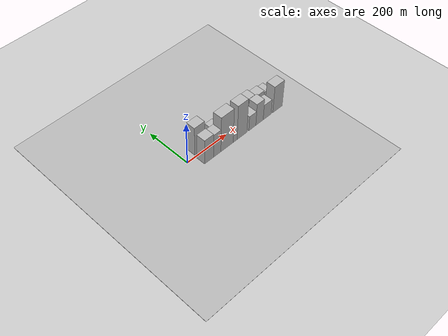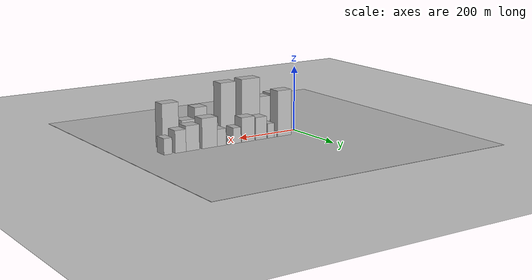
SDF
<?xml version="1.0" encoding="utf-8"?>

<sdf version="1.6">

   <world name="default">

      <gui fullscreen="0">

         <camera name="user_camera">

            <pose>-15 0 4.57585 0 0 0</pose>

            <view_controller>orbit</view_controller>

         </camera>

      </gui>

      <scene>

         <sky>

           <clouds>

             <speed>12</speed>

           </clouds>

         </sky>

         <ambient>0.4 0.4 0.4 1</ambient>

         <background>0.7 0.7 0.7 1</background>

         <shadows>1</shadows>

      </scene>

      <gravity>0 0 -9.8066</gravity>

      <magnetic_field>6e-06 2.3e-05 -4.2e-05</magnetic_field>

      <physics default="0" name="default_physics" type="ode">

         <ode>

            <solver>

               <type>quick</type>

               <iters>10</iters>

               <sor>1.0</sor>

               <use_dynamic_moi_rescaling>0</use_dynamic_moi_rescaling>

            </solver>

            <constraints>

               <cfm>0</cfm>

               <erp>0.2</erp>

               <contact_max_correcting_vel>100</contact_max_correcting_vel>

               <contact_surface_layer>0.001</contact_surface_layer>

            </constraints>

         </ode>

         <max_step_size>0.004</max_step_size>

         <real_time_factor>1</real_time_factor>

         <real_time_update_rate>250</real_time_update_rate>

      </physics>

      <light name="sun" type="directional">

         <cast_shadows>1</cast_shadows>

         <pose>0 0 10 0 0 0</pose>

         <diffuse>0.8 0.8 0.8 1</diffuse>

         <specular>0.2 0.2 0.2 1</specular>

         <attenuation>

            <range>1000</range>

            <constant>0.9</constant>

            <linear>0.01</linear>

            <quadratic>0.001</quadratic>

         </attenuation>

         <direction>-0.5 0.1 -0.9</direction>

      </light>

      <include>

         <name>ground_plane_1</name>

         <uri>model://HANNAS_ground_plane</uri>

         <pose>0 0 0  0 0 0</pose>

      </include>

      <include>

         <name>ground_plane_2</name>

         <uri>model://HANNAS_ground_plane</uri>

         <pose>100 0 0  0 0 0</pose>

      </include>

      <model name="building_1">

         <static>1</static>

         <pose frame="">69.1234 27.5000 0 0.000000 0.000000 1.570796</pose>

         <link name="link">

            <pose frame="">0 0 70.50 0 0 0</pose>

            <collision name="collision">

               <geometry>

                  <box>

                     <size>40.0000 50.2469 141.0000</size>

                  </box>

               </geometry>

               <max_contacts>10</max_contacts>

               <surface>

                  <contact>

                     <ode/>

                  </contact>

                  <bounce/>

                  <friction>

                     <torsional>

                        <ode/>

                     </torsional>

                     <ode/>

                  </friction>

               </surface>

            </collision>

            <visual name="visual">

               <cast_shadows>0</cast_shadows>

               <geometry>

                  <box>

                     <size>40.0000 50.2469 141.0000</size>

                  </box>

               </geometry>

               <material>

                  <script>

                     <uri>model://HANNAS_wall/materials/scripts</uri>

                     <uri>model://HANNAS_wall/materials/textures</uri>

                     <name>vrc/HANNAS_wall</name>

                  </script>

               </material>

            </visual>

            <self_collide>0</self_collide>

            <enable_wind>0</enable_wind>

            <kinematic>0</kinematic>

         </link>

      </model>

      <model name="building_2">

         <static>1</static>

         <pose frame="">102.7130 27.5000 0 0.000000 0.000000 1.570796</pose>

         <link name="link">

            <pose frame="">0 0 9.00 0 0 0</pose>

            <collision name="collision">

               <geometry>

                  <box>

                     <size>40.0000 8.9323 18.0000</size>

                  </box>

               </geometry>

               <max_contacts>10</max_contacts>

               <surface>

                  <contact>

                     <ode/>

                  </contact>

                  <bounce/>

                  <friction>

                     <torsional>

                        <ode/>

                     </torsional>

                     <ode/>

                  </friction>

               </surface>

            </collision>

            <visual name="visual">

               <cast_shadows>0</cast_shadows>

               <geometry>

                  <box>

                     <size>40.0000 8.9323 18.0000</size>

                  </box>

               </geometry>

               <material>

                  <script>

                     <uri>model://HANNAS_wall/materials/scripts</uri>

                     <uri>model://HANNAS_wall/materials/textures</uri>

                     <name>vrc/HANNAS_wall</name>

                  </script>

               </material>

            </visual>

            <self_collide>0</self_collide>

            <enable_wind>0</enable_wind>

            <kinematic>0</kinematic>

         </link>

      </model>

      <model name="building_3">

         <static>1</static>

         <pose frame="">118.8075 27.5000 0 0.000000 0.000000 1.570796</pose>

         <link name="link">

            <pose frame="">0 0 22.50 0 0 0</pose>

            <collision name="collision">

               <geometry>

                  <box>

                     <size>40.0000 23.2567 45.0000</size>

                  </box>

               </geometry>

               <max_contacts>10</max_contacts>

               <surface>

                  <contact>

                     <ode/>

                  </contact>

                  <bounce/>

                  <friction>

                     <torsional>

                        <ode/>

                     </torsional>

                     <ode/>

                  </friction>

               </surface>

            </collision>

            <visual name="visual">

               <cast_shadows>0</cast_shadows>

               <geometry>

                  <box>

                     <size>40.0000 23.2567 45.0000</size>

                  </box>

               </geometry>

               <material>

                  <script>

                     <uri>model://HANNAS_wall/materials/scripts</uri>

                     <uri>model://HANNAS_wall/materials/textures</uri>

                     <name>vrc/HANNAS_wall</name>

                  </script>

               </material>

            </visual>

            <self_collide>0</self_collide>

            <enable_wind>0</enable_wind>

            <kinematic>0</kinematic>

         </link>

      </model>

      <model name="building_4">

         <static>1</static>

         <pose frame="">153.4864 27.5000 0 0.000000 0.000000 1.570796</pose>

         <link name="link">

            <pose frame="">0 0 34.50 0 0 0</pose>

            <collision name="collision">

               <geometry>

                  <box>

                     <size>40.0000 38.1012 69.0000</size>

                  </box>

               </geometry>

               <max_contacts>10</max_contacts>

               <surface>

                  <contact>

                     <ode/>

                  </contact>

                  <bounce/>

                  <friction>

                     <torsional>

                        <ode/>

                     </torsional>

                     <ode/>

                  </friction>

               </surface>

            </collision>

            <visual name="visual">

               <cast_shadows>0</cast_shadows>

               <geometry>

                  <box>

                     <size>40.0000 38.1012 69.0000</size>

                  </box>

               </geometry>

               <material>

                  <script>

                     <uri>model://HANNAS_wall/materials/scripts</uri>

                     <uri>model://HANNAS_wall/materials/textures</uri>

                     <name>vrc/HANNAS_wall</name>

                  </script>

               </material>

            </visual>

            <self_collide>0</self_collide>

            <enable_wind>0</enable_wind>

            <kinematic>0</kinematic>

         </link>

      </model>

      <model name="building_5">

         <static>1</static>

         <pose frame="">199.9285 27.5000 0 0.000000 0.000000 1.570796</pose>

         <link name="link">

            <pose frame="">0 0 37.50 0 0 0</pose>

            <collision name="collision">

               <geometry>

                  <box>

                     <size>40.0000 44.7831 75.0000</size>

                  </box>

               </geometry>

               <max_contacts>10</max_contacts>

               <surface>

                  <contact>

                     <ode/>

                  </contact>

                  <bounce/>

                  <friction>

                     <torsional>

                        <ode/>

                     </torsional>

                     <ode/>

                  </friction>

               </surface>

            </collision>

            <visual name="visual">

               <cast_shadows>0</cast_shadows>

               <geometry>

                  <box>

                     <size>40.0000 44.7831 75.0000</size>

                  </box>

               </geometry>

               <material>

                  <script>

                     <uri>model://HANNAS_wall/materials/scripts</uri>

                     <uri>model://HANNAS_wall/materials/textures</uri>

                     <name>vrc/HANNAS_wall</name>

                  </script>

               </material>

            </visual>

            <self_collide>0</self_collide>

            <enable_wind>0</enable_wind>

            <kinematic>0</kinematic>

         </link>

      </model>

      <model name="building_6">

         <static>1</static>

         <pose frame="">238.6216 27.5000 0 0.000000 0.000000 1.570796</pose>

         <link name="link">

            <pose frame="">0 0 24.00 0 0 0</pose>

            <collision name="collision">

               <geometry>

                  <box>

                     <size>40.0000 26.6031 48.0000</size>

                  </box>

               </geometry>

               <max_contacts>10</max_contacts>

               <surface>

                  <contact>

                     <ode/>

                  </contact>

                  <bounce/>

                  <friction>

                     <torsional>

                        <ode/>

                     </torsional>

                     <ode/>

                  </friction>

               </surface>

            </collision>

            <visual name="visual">

               <cast_shadows>0</cast_shadows>

               <geometry>

                  <box>

                     <size>40.0000 26.6031 48.0000</size>

                  </box>

               </geometry>

               <material>

                  <script>

                     <uri>model://HANNAS_wall/materials/scripts</uri>

                     <uri>model://HANNAS_wall/materials/textures</uri>

                     <name>vrc/HANNAS_wall</name>

                  </script>

               </material>

            </visual>

            <self_collide>0</self_collide>

            <enable_wind>0</enable_wind>

            <kinematic>0</kinematic>

         </link>

      </model>

      <model name="building_7">

         <static>1</static>

         <pose frame="">265.0677 27.5000 0 0.000000 0.000000 1.570796</pose>

         <link name="link">

            <pose frame="">0 0 12.00 0 0 0</pose>

            <collision name="collision">

               <geometry>

                  <box>

                     <size>40.0000 10.2891 24.0000</size>

                  </box>

               </geometry>

               <max_contacts>10</max_contacts>

               <surface>

                  <contact>

                     <ode/>

                  </contact>

                  <bounce/>

                  <friction>

                     <torsional>

                        <ode/>

                     </torsional>

                     <ode/>

                  </friction>

               </surface>

            </collision>

            <visual name="visual">

               <cast_shadows>0</cast_shadows>

               <geometry>

                  <box>

                     <size>40.0000 10.2891 24.0000</size>

                  </box>

               </geometry>

               <material>

                  <script>

                     <uri>model://HANNAS_wall/materials/scripts</uri>

                     <uri>model://HANNAS_wall/materials/textures</uri>

                     <name>vrc/HANNAS_wall</name>

                  </script>

               </material>

            </visual>

            <self_collide>0</self_collide>

            <enable_wind>0</enable_wind>

            <kinematic>0</kinematic>

         </link>

      </model>

      <model name="building_8">

         <static>1</static>

         <pose frame="">292.2844 27.5000 0 0.000000 0.000000 1.570796</pose>

         <link name="link">

            <pose frame="">0 0 25.50 0 0 0</pose>

            <collision name="collision">

               <geometry>

                  <box>

                     <size>40.0000 30.1442 51.0000</size>

                  </box>

               </geometry>

               <max_contacts>10</max_contacts>

               <surface>

                  <contact>

                     <ode/>

                  </contact>

                  <bounce/>

                  <friction>

                     <torsional>

                        <ode/>

                     </torsional>

                     <ode/>

                  </friction>

               </surface>

            </collision>

            <visual name="visual">

               <cast_shadows>0</cast_shadows>

               <geometry>

                  <box>

                     <size>40.0000 30.1442 51.0000</size>

                  </box>

               </geometry>

               <material>

                  <script>

                     <uri>model://HANNAS_wall/materials/scripts</uri>

                     <uri>model://HANNAS_wall/materials/textures</uri>

                     <name>vrc/HANNAS_wall</name>

                  </script>

               </material>

            </visual>

            <self_collide>0</self_collide>

            <enable_wind>0</enable_wind>

            <kinematic>0</kinematic>

         </link>

      </model>

      <model name="building_9">

         <static>1</static>

         <pose frame="">332.7110 27.5000 0 0.000000 0.000000 1.570796</pose>

         <link name="link">

            <pose frame="">0 0 45.00 0 0 0</pose>

            <collision name="collision">

               <geometry>

                  <box>

                     <size>40.0000 50.7090 90.0000</size>

                  </box>

               </geometry>

               <max_contacts>10</max_contacts>

               <surface>

                  <contact>

                     <ode/>

                  </contact>

                  <bounce/>

                  <friction>

                     <torsional>

                        <ode/>

                     </torsional>

                     <ode/>

                  </friction>

               </surface>

            </collision>

            <visual name="visual">

               <cast_shadows>0</cast_shadows>

               <geometry>

                  <box>

                     <size>40.0000 50.7090 90.0000</size>

                  </box>

               </geometry>

               <material>

                  <script>

                     <uri>model://HANNAS_wall/materials/scripts</uri>

                     <uri>model://HANNAS_wall/materials/textures</uri>

                     <name>vrc/HANNAS_wall</name>

                  </script>

               </material>

            </visual>

            <self_collide>0</self_collide>

            <enable_wind>0</enable_wind>

            <kinematic>0</kinematic>

         </link>

      </model>

      <model name="building_10">

         <static>1</static>

         <pose frame="">389.3196 27.5000 0 0.000000 0.000000 1.570796</pose>

         <link name="link">

            <pose frame="">0 0 37.50 0 0 0</pose>

            <collision name="collision">

               <geometry>

                  <box>

                     <size>40.0000 44.5082 75.0000</size>

                  </box>

               </geometry>

               <max_contacts>10</max_contacts>

               <surface>

                  <contact>

                     <ode/>

                  </contact>

                  <bounce/>

                  <friction>

                     <torsional>

                        <ode/>

                     </torsional>

                     <ode/>

                  </friction>

               </surface>

            </collision>

            <visual name="visual">

               <cast_shadows>0</cast_shadows>

               <geometry>

                  <box>

                     <size>40.0000 44.5082 75.0000</size>

                  </box>

               </geometry>

               <material>

                  <script>

                     <uri>model://HANNAS_wall/materials/scripts</uri>

                     <uri>model://HANNAS_wall/materials/textures</uri>

                     <name>vrc/HANNAS_wall</name>

                  </script>

               </material>

            </visual>

            <self_collide>0</self_collide>

            <enable_wind>0</enable_wind>

            <kinematic>0</kinematic>

         </link>

      </model>

      <model name="building_11">

         <static>1</static>

         <pose frame="">429.1705 27.5000 0 0.000000 0.000000 1.570796</pose>

         <link name="link">

            <pose frame="">0 0 33.00 0 0 0</pose>

            <collision name="collision">

               <geometry>

                  <box>

                     <size>40.0000 35.1936 66.0000</size>

                  </box>

               </geometry>

               <max_contacts>10</max_contacts>

               <surface>

                  <contact>

                     <ode/>

                  </contact>

                  <bounce/>

                  <friction>

                     <torsional>

                        <ode/>

                     </torsional>

                     <ode/>

                  </friction>

               </surface>

            </collision>

            <visual name="visual">

               <cast_shadows>0</cast_shadows>

               <geometry>

                  <box>

                     <size>40.0000 35.1936 66.0000</size>

                  </box>

               </geometry>

               <material>

                  <script>

                     <uri>model://HANNAS_wall/materials/scripts</uri>

                     <uri>model://HANNAS_wall/materials/textures</uri>

                     <name>vrc/HANNAS_wall</name>

                  </script>

               </material>

            </visual>

            <self_collide>0</self_collide>

            <enable_wind>0</enable_wind>

            <kinematic>0</kinematic>

         </link>

      </model>

      <model name="building_12">

         <static>1</static>

         <pose frame="">470.0075 27.5000 0 0.000000 0.000000 1.570796</pose>

         <link name="link">

            <pose frame="">0 0 24.00 0 0 0</pose>

            <collision name="collision">

               <geometry>

                  <box>

                     <size>40.0000 26.4804 48.0000</size>

                  </box>

               </geometry>

               <max_contacts>10</max_contacts>

               <surface>

                  <contact>

                     <ode/>

                  </contact>

                  <bounce/>

                  <friction>

                     <torsional>

                        <ode/>

                     </torsional>

                     <ode/>

                  </friction>

               </surface>

            </collision>

            <visual name="visual">

               <cast_shadows>0</cast_shadows>

               <geometry>

                  <box>

                     <size>40.0000 26.4804 48.0000</size>

                  </box>

               </geometry>

               <material>

                  <script>

                     <uri>model://HANNAS_wall/materials/scripts</uri>

                     <uri>model://HANNAS_wall/materials/textures</uri>

                     <name>vrc/HANNAS_wall</name>

                  </script>

               </material>

            </visual>

            <self_collide>0</self_collide>

            <enable_wind>0</enable_wind>

            <kinematic>0</kinematic>

         </link>

      </model>

      <model name="building_13">

         <static>1</static>

         <pose frame="">62.4009 -27.5000 0 0.000000 0.000000 1.570796</pose>

         <link name="link">

            <pose frame="">0 0 61.50 0 0 0</pose>

            <collision name="collision">

               <geometry>

                  <box>

                     <size>40.0000 44.8017 123.0000</size>

                  </box>

               </geometry>

               <max_contacts>10</max_contacts>

               <surface>

                  <contact>

                     <ode/>

                  </contact>

                  <bounce/>

                  <friction>

                     <torsional>

                        <ode/>

                     </torsional>

                     <ode/>

                  </friction>

               </surface>

            </collision>

            <visual name="visual">

               <cast_shadows>0</cast_shadows>

               <geometry>

                  <box>

                     <size>40.0000 44.8017 123.0000</size>

                  </box>

               </geometry>

               <material>

                  <script>

                     <uri>model://HANNAS_wall/materials/scripts</uri>

                     <uri>model://HANNAS_wall/materials/textures</uri>

                     <name>vrc/HANNAS_wall</name>

                  </script>

               </material>

            </visual>

            <self_collide>0</self_collide>

            <enable_wind>0</enable_wind>

            <kinematic>0</kinematic>

         </link>

      </model>

      <model name="building_14">

         <static>1</static>

         <pose frame="">103.5913 -27.5000 0 0.000000 0.000000 1.570796</pose>

         <link name="link">

            <pose frame="">0 0 58.50 0 0 0</pose>

            <collision name="collision">

               <geometry>

                  <box>

                     <size>40.0000 37.5791 117.0000</size>

                  </box>

               </geometry>

               <max_contacts>10</max_contacts>

               <surface>

                  <contact>

                     <ode/>

                  </contact>

                  <bounce/>

                  <friction>

                     <torsional>

                        <ode/>

                     </torsional>

                     <ode/>

                  </friction>

               </surface>

            </collision>

            <visual name="visual">

               <cast_shadows>0</cast_shadows>

               <geometry>

                  <box>

                     <size>40.0000 37.5791 117.0000</size>

                  </box>

               </geometry>

               <material>

                  <script>

                     <uri>model://HANNAS_wall/materials/scripts</uri>

                     <uri>model://HANNAS_wall/materials/textures</uri>

                     <name>vrc/HANNAS_wall</name>

                  </script>

               </material>

            </visual>

            <self_collide>0</self_collide>

            <enable_wind>0</enable_wind>

            <kinematic>0</kinematic>

         </link>

      </model>

      <model name="building_15">

         <static>1</static>

         <pose frame="">154.8363 -27.5000 0 0.000000 0.000000 1.570796</pose>

         <link name="link">

            <pose frame="">0 0 88.50 0 0 0</pose>

            <collision name="collision">

               <geometry>

                  <box>

                     <size>40.0000 64.9108 177.0000</size>

                  </box>

               </geometry>

               <max_contacts>10</max_contacts>

               <surface>

                  <contact>

                     <ode/>

                  </contact>

                  <bounce/>

                  <friction>

                     <torsional>

                        <ode/>

                     </torsional>

                     <ode/>

                  </friction>

               </surface>

            </collision>

            <visual name="visual">

               <cast_shadows>0</cast_shadows>

               <geometry>

                  <box>

                     <size>40.0000 64.9108 177.0000</size>

                  </box>

               </geometry>

               <material>

                  <script>

                     <uri>model://HANNAS_wall/materials/scripts</uri>

                     <uri>model://HANNAS_wall/materials/textures</uri>

                     <name>vrc/HANNAS_wall</name>

                  </script>

               </material>

            </visual>

            <self_collide>0</self_collide>

            <enable_wind>0</enable_wind>

            <kinematic>0</kinematic>

         </link>

      </model>

      <model name="building_16">

         <static>1</static>

         <pose frame="">197.5023 -27.5000 0 0.000000 0.000000 1.570796</pose>

         <link name="link">

            <pose frame="">0 0 18.00 0 0 0</pose>

            <collision name="collision">

               <geometry>

                  <box>

                     <size>40.0000 20.4214 36.0000</size>

                  </box>

               </geometry>

               <max_contacts>10</max_contacts>

               <surface>

                  <contact>

                     <ode/>

                  </contact>

                  <bounce/>

                  <friction>

                     <torsional>

                        <ode/>

                     </torsional>

                     <ode/>

                  </friction>

               </surface>

            </collision>

            <visual name="visual">

               <cast_shadows>0</cast_shadows>

               <geometry>

                  <box>

                     <size>40.0000 20.4214 36.0000</size>

                  </box>

               </geometry>

               <material>

                  <script>

                     <uri>model://HANNAS_wall/materials/scripts</uri>

                     <uri>model://HANNAS_wall/materials/textures</uri>

                     <name>vrc/HANNAS_wall</name>

                  </script>

               </material>

            </visual>

            <self_collide>0</self_collide>

            <enable_wind>0</enable_wind>

            <kinematic>0</kinematic>

         </link>

      </model>

      <model name="building_17">

         <static>1</static>

         <pose frame="">234.2415 -27.5000 0 0.000000 0.000000 1.570796</pose>

         <link name="link">

            <pose frame="">0 0 87.00 0 0 0</pose>

            <collision name="collision">

               <geometry>

                  <box>

                     <size>40.0000 53.0570 174.0000</size>

                  </box>

               </geometry>

               <max_contacts>10</max_contacts>

               <surface>

                  <contact>

                     <ode/>

                  </contact>

                  <bounce/>

                  <friction>

                     <torsional>

                        <ode/>

                     </torsional>

                     <ode/>

                  </friction>

               </surface>

            </collision>

            <visual name="visual">

               <cast_shadows>0</cast_shadows>

               <geometry>

                  <box>

                     <size>40.0000 53.0570 174.0000</size>

                  </box>

               </geometry>

               <material>

                  <script>

                     <uri>model://HANNAS_wall/materials/scripts</uri>

                     <uri>model://HANNAS_wall/materials/textures</uri>

                     <name>vrc/HANNAS_wall</name>

                  </script>

               </material>

            </visual>

            <self_collide>0</self_collide>

            <enable_wind>0</enable_wind>

            <kinematic>0</kinematic>

         </link>

      </model>

      <model name="building_18">

         <static>1</static>

         <pose frame="">289.9728 -27.5000 0 0.000000 0.000000 1.570796</pose>

         <link name="link">

            <pose frame="">0 0 37.50 0 0 0</pose>

            <collision name="collision">

               <geometry>

                  <box>

                     <size>40.0000 38.4056 75.0000</size>

                  </box>

               </geometry>

               <max_contacts>10</max_contacts>

               <surface>

                  <contact>

                     <ode/>

                  </contact>

                  <bounce/>

                  <friction>

                     <torsional>

                        <ode/>

                     </torsional>

                     <ode/>

                  </friction>

               </surface>

            </collision>

            <visual name="visual">

               <cast_shadows>0</cast_shadows>

               <geometry>

                  <box>

                     <size>40.0000 38.4056 75.0000</size>

                  </box>

               </geometry>

               <material>

                  <script>

                     <uri>model://HANNAS_wall/materials/scripts</uri>

                     <uri>model://HANNAS_wall/materials/textures</uri>

                     <name>vrc/HANNAS_wall</name>

                  </script>

               </material>

            </visual>

            <self_collide>0</self_collide>

            <enable_wind>0</enable_wind>

            <kinematic>0</kinematic>

         </link>

      </model>

      <model name="building_19">

         <static>1</static>

         <pose frame="">329.4736 -27.5000 0 0.000000 0.000000 1.570796</pose>

         <link name="link">

            <pose frame="">0 0 55.50 0 0 0</pose>

            <collision name="collision">

               <geometry>

                  <box>

                     <size>40.0000 40.5959 111.0000</size>

                  </box>

               </geometry>

               <max_contacts>10</max_contacts>

               <surface>

                  <contact>

                     <ode/>

                  </contact>

                  <bounce/>

                  <friction>

                     <torsional>

                        <ode/>

                     </torsional>

                     <ode/>

                  </friction>

               </surface>

            </collision>

            <visual name="visual">

               <cast_shadows>0</cast_shadows>

               <geometry>

                  <box>

                     <size>40.0000 40.5959 111.0000</size>

                  </box>

               </geometry>

               <material>

                  <script>

                     <uri>model://HANNAS_wall/materials/scripts</uri>

                     <uri>model://HANNAS_wall/materials/textures</uri>

                     <name>vrc/HANNAS_wall</name>

                  </script>

               </material>

            </visual>

            <self_collide>0</self_collide>

            <enable_wind>0</enable_wind>

            <kinematic>0</kinematic>

         </link>

      </model>

      <model name="building_20">

         <static>1</static>

         <pose frame="">371.7586 -27.5000 0 0.000000 0.000000 1.570796</pose>

         <link name="link">

            <pose frame="">0 0 39.00 0 0 0</pose>

            <collision name="collision">

               <geometry>

                  <box>

                     <size>40.0000 43.9742 78.0000</size>

                  </box>

               </geometry>

               <max_contacts>10</max_contacts>

               <surface>

                  <contact>

                     <ode/>

                  </contact>

                  <bounce/>

                  <friction>

                     <torsional>

                        <ode/>

                     </torsional>

                     <ode/>

                  </friction>

               </surface>

            </collision>

            <visual name="visual">

               <cast_shadows>0</cast_shadows>

               <geometry>

                  <box>

                     <size>40.0000 43.9742 78.0000</size>

                  </box>

               </geometry>

               <material>

                  <script>

                     <uri>model://HANNAS_wall/materials/scripts</uri>

                     <uri>model://HANNAS_wall/materials/textures</uri>

                     <name>vrc/HANNAS_wall</name>

                  </script>

               </material>

            </visual>

            <self_collide>0</self_collide>

            <enable_wind>0</enable_wind>

            <kinematic>0</kinematic>

         </link>

      </model>

      <model name="building_21">

         <static>1</static>

         <pose frame="">430.7106 -27.5000 0 0.000000 0.000000 1.570796</pose>

         <link name="link">

            <pose frame="">0 0 67.50 0 0 0</pose>

            <collision name="collision">

               <geometry>

                  <box>

                     <size>40.0000 53.9299 135.0000</size>

                  </box>

               </geometry>

               <max_contacts>10</max_contacts>

               <surface>

                  <contact>

                     <ode/>

                  </contact>

                  <bounce/>

                  <friction>

                     <torsional>

                        <ode/>

                     </torsional>

                     <ode/>

                  </friction>

               </surface>

            </collision>

            <visual name="visual">

               <cast_shadows>0</cast_shadows>

               <geometry>

                  <box>

                     <size>40.0000 53.9299 135.0000</size>

                  </box>

               </geometry>

               <material>

                  <script>

                     <uri>model://HANNAS_wall/materials/scripts</uri>

                     <uri>model://HANNAS_wall/materials/textures</uri>

                     <name>vrc/HANNAS_wall</name>

                  </script>

               </material>

            </visual>

            <self_collide>0</self_collide>

            <enable_wind>0</enable_wind>

            <kinematic>0</kinematic>

         </link>

      </model>

   </world>

</sdf>

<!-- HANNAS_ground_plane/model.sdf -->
<sdf version="1.4">
<model name="HANNAS_ground_plane">
  <static>true</static>
    <link name="link">
      <collision name="collision">
        <geometry>
          <plane>
            <normal>0 0 1</normal>
            <size>1000 1000</size>
          </plane>
        </geometry>
        <surface>
          <friction>
            <ode>
              <mu>100</mu>
              <mu2>50</mu2>
            </ode>
          </friction>
        </surface>
      </collision>
      <visual name="visual">
        <cast_shadows>false</cast_shadows>
        <geometry>
          <plane>
            <normal>0 0 1</normal>
            <size>1000 1000</size>
          </plane>
        </geometry>
        <material>
          <script>
            <uri>model://HANNAS_ground_plane/materials/scripts/HANNAS_ground_plane.material</uri>
	    <uri>model://HANNAS_ground_plane/materials/textures</uri>
            <name>HANNASGroundPlane/Image</name>
          </script>
        </material>
      </visual>
    </link>
  </model>
</sdf>
